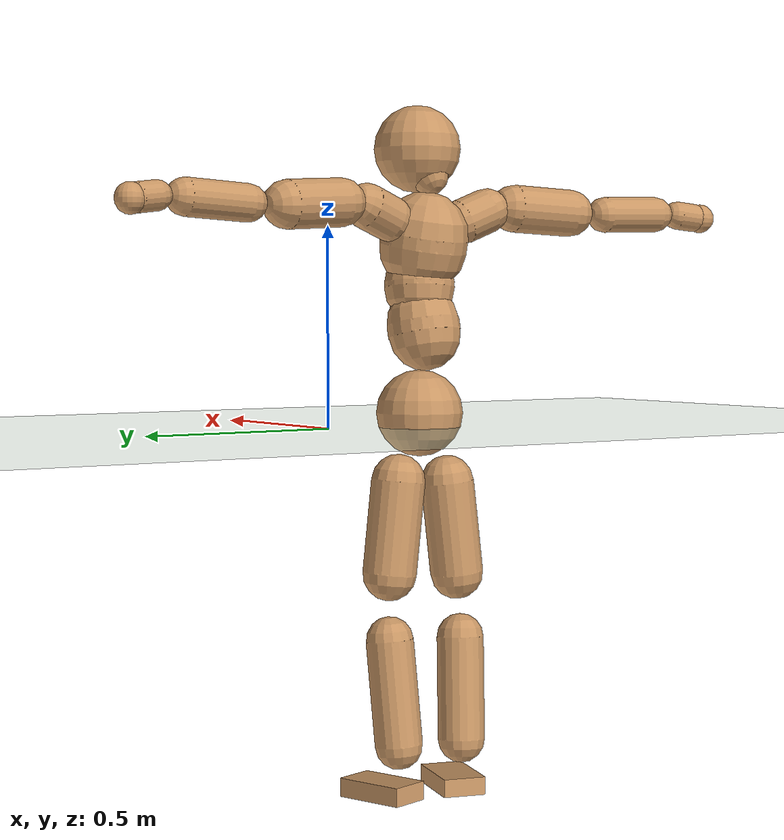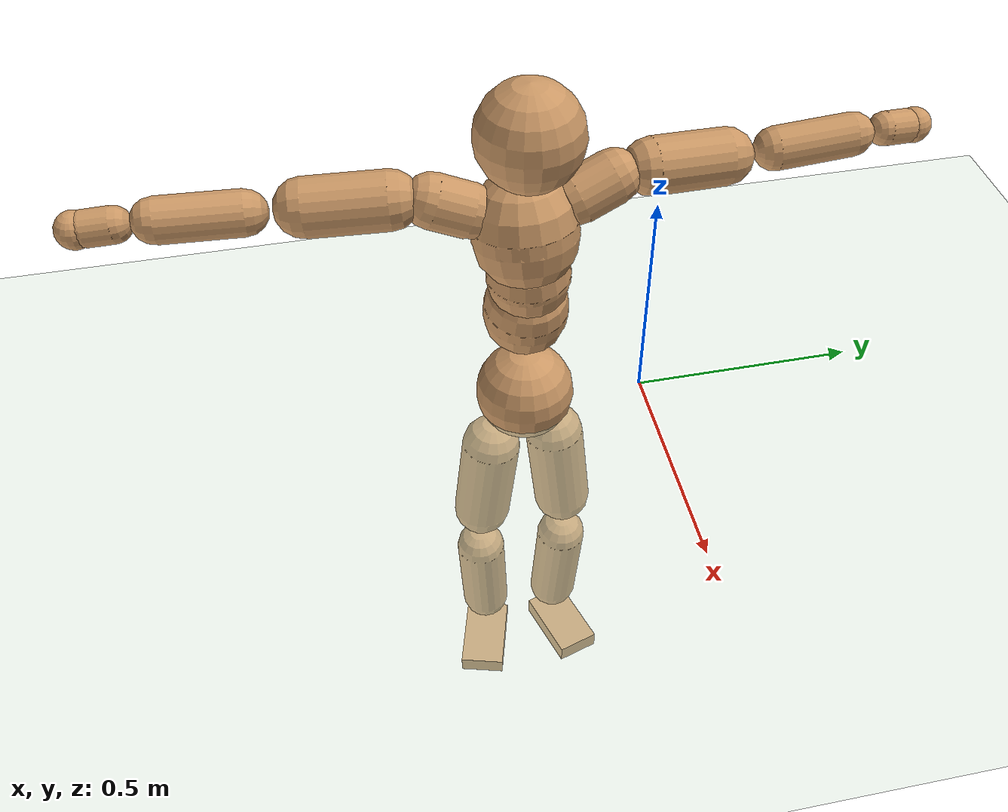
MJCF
<mujoco model="humanoid">
  <compiler coordinate="local"/>
  <default>
    <joint damping="0.0" armature="0.01" stiffness="0.0" limited="true"/>
    <geom conaffinity="1" condim="3" contype="7" margin="0.001" rgba="0.8 0.6 .4 1"/>
  </default>
  <asset>
    <texture type="skybox" builtin="gradient" rgb1=".4 .5 .6" rgb2="0 0 0" width="100" height="100"/>
    <texture builtin="flat" height="1278" mark="cross" markrgb="1 1 1" name="texgeom" random="0.01" rgb1="0.8 0.6 0.4" rgb2="0.8 0.6 0.4" type="cube" width="127"/>
    <texture builtin="checker" height="100" name="texplane" rgb1="0 0 0" rgb2="0.8 0.8 0.8" type="2d" width="100"/>
    <material name="MatPlane" reflectance="0.5" shininess="1" specular="1" texrepeat="60 60" texture="texplane"/>
    <material name="geom" texture="texgeom" texuniform="true"/>
  </asset>
  <worldbody>
    <light cutoff="100" diffuse="1 1 1" dir="-0 0 -1.3" directional="true" exponent="1" pos="0 0 1.3" specular=".1 .1 .1"/>
    <geom conaffinity="1" condim="3" name="floor" pos="0 0 0" rgba="0.8 0.9 0.8 1" size="100 100 .2" type="plane" material="MatPlane"/>
    <body name="Pelvis" pos="-0.0008 -0.2695 0.0333">
      <freejoint name="Pelvis"/>
      <geom type="sphere" contype="1" conaffinity="1" density="500" size="0.1101" pos="0.0000 0.0000 0.0000" name="Pelvis"/>
      <body name="L_Hip" pos="-0.0159 0.0665 -0.0902">
        <joint name="L_Hip_x" type="hinge" pos="0 0 0" axis="1 0 0" stiffness="800" damping="80" armature="0.02" range="-180.0000 180.0000"/>
        <joint name="L_Hip_y" type="hinge" pos="0 0 0" axis="0 1 0" stiffness="800" damping="80" armature="0.02" range="-180.0000 180.0000"/>
        <joint name="L_Hip_z" type="hinge" pos="0 0 0" axis="0 0 1" stiffness="800" damping="80" armature="0.02" range="-180.0000 180.0000"/>
        <geom type="capsule" contype="1" conaffinity="1" density="500" fromto="0.0010 0.0083 -0.0784 0.0041 0.0331 -0.3137" size="0.0681" name="L_Hip"/>
        <body name="L_Knee" pos="0.0052 0.0414 -0.3922">
          <joint name="L_Knee_x" type="hinge" pos="0 0 0" axis="1 0 0" stiffness="800" damping="80" armature="0.02" range="-180.0000 180.0000"/>
          <joint name="L_Knee_y" type="hinge" pos="0 0 0" axis="0 1 0" stiffness="800" damping="80" armature="0.02" range="-180.0000 180.0000"/>
          <joint name="L_Knee_z" type="hinge" pos="0 0 0" axis="0 0 1" stiffness="800" damping="80" armature="0.02" range="-180.0000 180.0000"/>
          <geom type="capsule" contype="1" conaffinity="1" density="500" fromto="-0.0086 -0.0035 -0.0885 -0.0343 -0.0138 -0.3542" size="0.0605" name="L_Knee"/>
          <body name="L_Ankle" pos="-0.0429 -0.0173 -0.4427">
            <joint name="L_Ankle_x" type="hinge" pos="0 0 0" axis="1 0 0" stiffness="800" damping="80" armature="0.02" range="-180.0000 180.0000"/>
            <joint name="L_Ankle_y" type="hinge" pos="0 0 0" axis="0 1 0" stiffness="800" damping="80" armature="0.02" range="-180.0000 180.0000"/>
            <joint name="L_Ankle_z" type="hinge" pos="0 0 0" axis="0 0 1" stiffness="800" damping="80" armature="0.02" range="-180.0000 180.0000"/>
            <geom type="box" contype="1" conaffinity="1" density="500" pos="0.0641 0.0195 -0.0313" size="0.094 0.0532 0.024" quat="0.9891 0.0000 0.0000 0.1472" name="L_Ankle"/>
            <body name="L_Toe" pos="0.1282 0.039 -0.0627">
              <joint name="L_Toe_x" type="hinge" pos="0 0 0" axis="1 0 0" stiffness="500" damping="50" armature="0.02" range="-180.0000 180.0000"/>
              <joint name="L_Toe_y" type="hinge" pos="0 0 0" axis="0 1 0" stiffness="500" damping="50" armature="0.02" range="-180.0000 180.0000"/>
              <joint name="L_Toe_z" type="hinge" pos="0 0 0" axis="0 0 1" stiffness="500" damping="50" armature="0.02" range="-180.0000 180.0000"/>
              <geom type="box" contype="1" conaffinity="1" density="500" pos="0.0000 0.0000 0.0305" size="0.0011 0.0026 0.0012" quat="0.9884 0.0000 0.0000 0.1520" name="L_Toe"/>
            </body>
          </body>
        </body>
      </body>
      <body name="R_Hip" pos="-0.0111 -0.0685 -0.099">
        <joint name="R_Hip_x" type="hinge" pos="0 0 0" axis="1 0 0" stiffness="800" damping="80" armature="0.02" range="-180.0000 180.0000"/>
        <joint name="R_Hip_y" type="hinge" pos="0 0 0" axis="0 1 0" stiffness="800" damping="80" armature="0.02" range="-180.0000 180.0000"/>
        <joint name="R_Hip_z" type="hinge" pos="0 0 0" axis="0 0 1" stiffness="800" damping="80" armature="0.02" range="-180.0000 180.0000"/>
        <geom type="capsule" contype="1" conaffinity="1" density="500" fromto="-0.0016 -0.0087 -0.0787 -0.0063 -0.0348 -0.3148" size="0.0679" name="R_Hip"/>
        <body name="R_Knee" pos="-0.0079 -0.0435 -0.3935">
          <joint name="R_Knee_x" type="hinge" pos="0 0 0" axis="1 0 0" stiffness="800" damping="80" armature="0.02" range="-180.0000 180.0000"/>
          <joint name="R_Knee_y" type="hinge" pos="0 0 0" axis="0 1 0" stiffness="800" damping="80" armature="0.02" range="-180.0000 180.0000"/>
          <joint name="R_Knee_z" type="hinge" pos="0 0 0" axis="0 0 1" stiffness="800" damping="80" armature="0.02" range="-180.0000 180.0000"/>
          <geom type="capsule" contype="1" conaffinity="1" density="500" fromto="-0.0079 0.0042 -0.0874 -0.0318 0.0168 -0.3494" size="0.0602" name="R_Knee"/>
          <body name="R_Ankle" pos="-0.0397 0.021 -0.4368">
            <joint name="R_Ankle_x" type="hinge" pos="0 0 0" axis="1 0 0" stiffness="800" damping="80" armature="0.02" range="-180.0000 180.0000"/>
            <joint name="R_Ankle_y" type="hinge" pos="0 0 0" axis="0 1 0" stiffness="800" damping="80" armature="0.02" range="-180.0000 180.0000"/>
            <joint name="R_Ankle_z" type="hinge" pos="0 0 0" axis="0 0 1" stiffness="800" damping="80" armature="0.02" range="-180.0000 180.0000"/>
            <geom type="box" contype="1" conaffinity="1" density="500" pos="0.0686 -0.0195 -0.0319" size="0.0952 0.0558 0.0231" quat="0.9904 0.0000 0.0000 -0.1381" name="R_Ankle"/>
            <body name="R_Toe" pos="0.1372 -0.039 -0.0637">
              <joint name="R_Toe_x" type="hinge" pos="0 0 0" axis="1 0 0" stiffness="500" damping="50" armature="0.02" range="-180.0000 180.0000"/>
              <joint name="R_Toe_y" type="hinge" pos="0 0 0" axis="0 1 0" stiffness="500" damping="50" armature="0.02" range="-180.0000 180.0000"/>
              <joint name="R_Toe_z" type="hinge" pos="0 0 0" axis="0 0 1" stiffness="500" damping="50" armature="0.02" range="-180.0000 180.0000"/>
              <geom type="box" contype="1" conaffinity="1" density="500" pos="0.0000 0.0000 0.0333" size="0.0012 0.0027 0.0012" quat="0.9916 0.0000 0.0000 -0.1296" name="R_Toe"/>
            </body>
          </body>
        </body>
      </body>
      <body name="Torso" pos="-0.0456 0.0047 0.139">
        <joint name="Torso_x" type="hinge" pos="0 0 0" axis="1 0 0" stiffness="1000" damping="100" armature="0.02" range="-180.0000 180.0000"/>
        <joint name="Torso_y" type="hinge" pos="0 0 0" axis="0 1 0" stiffness="1000" damping="100" armature="0.02" range="-180.0000 180.0000"/>
        <joint name="Torso_z" type="hinge" pos="0 0 0" axis="0 0 1" stiffness="1000" damping="100" armature="0.02" range="-180.0000 180.0000"/>
        <geom type="capsule" contype="1" conaffinity="1" density="500" fromto="0.0186 0.0031 0.0917 0.0124 0.0021 0.0612" size="0.0917" name="Torso"/>
        <body name="Spine" pos="0.031 0.0052 0.1529">
          <joint name="Spine_x" type="hinge" pos="0 0 0" axis="1 0 0" stiffness="1000" damping="100" armature="0.02" range="-180.0000 180.0000"/>
          <joint name="Spine_y" type="hinge" pos="0 0 0" axis="0 1 0" stiffness="1000" damping="100" armature="0.02" range="-180.0000 180.0000"/>
          <joint name="Spine_z" type="hinge" pos="0 0 0" axis="0 0 1" stiffness="1000" damping="100" armature="0.02" range="-180.0000 180.0000"/>
          <geom type="capsule" contype="1" conaffinity="1" density="500" fromto="0.0035 -0.0020 0.0373 0.0023 -0.0013 0.0248" size="0.089" name="Spine"/>
          <body name="Chest" pos="0.0058 -0.0033 0.0621">
            <joint name="Chest_x" type="hinge" pos="0 0 0" axis="1 0 0" stiffness="1000" damping="100" armature="0.02" range="-180.0000 180.0000"/>
            <joint name="Chest_y" type="hinge" pos="0 0 0" axis="0 1 0" stiffness="1000" damping="100" armature="0.02" range="-180.0000 180.0000"/>
            <joint name="Chest_z" type="hinge" pos="0 0 0" axis="0 0 1" stiffness="1000" damping="100" armature="0.02" range="-180.0000 180.0000"/>
            <geom type="capsule" contype="1" conaffinity="1" density="500" fromto="-0.0175 -0.0046 0.0934 -0.0117 -0.0031 0.0623" size="0.111" name="Chest"/>
            <body name="Neck" pos="-0.0413 -0.0121 0.2244">
              <joint name="Neck_x" type="hinge" pos="0 0 0" axis="1 0 0" stiffness="500" damping="50" armature="0.02" range="-180.0000 180.0000"/>
              <joint name="Neck_y" type="hinge" pos="0 0 0" axis="0 1 0" stiffness="500" damping="50" armature="0.02" range="-180.0000 180.0000"/>
              <joint name="Neck_z" type="hinge" pos="0 0 0" axis="0 0 1" stiffness="500" damping="50" armature="0.02" range="-180.0000 180.0000"/>
              <geom type="capsule" contype="1" conaffinity="1" density="500" fromto="0.0105 0.0020 0.0172 0.0421 0.0082 0.0690" size="0.0478" name="Neck"/>
              <body name="Head" pos="0.0526 0.0102 0.0862">
                <joint name="Head_x" type="hinge" pos="0 0 0" axis="1 0 0" stiffness="500" damping="50" armature="0.02" range="-180.0000 180.0000"/>
                <joint name="Head_y" type="hinge" pos="0 0 0" axis="0 1 0" stiffness="500" damping="50" armature="0.02" range="-180.0000 180.0000"/>
                <joint name="Head_z" type="hinge" pos="0 0 0" axis="0 0 1" stiffness="500" damping="50" armature="0.02" range="-180.0000 180.0000"/>
                <geom type="sphere" contype="1" conaffinity="1" density="500" size="0.1091" pos="0.0000 0.0000 0.0000" name="Head"/>
              </body>
            </body>
            <body name="L_Thorax" pos="-0.0208 0.0779 0.1225">
              <joint name="L_Thorax_x" type="hinge" pos="0 0 0" axis="1 0 0" stiffness="500" damping="50" armature="0.02" range="-180.0000 180.0000"/>
              <joint name="L_Thorax_y" type="hinge" pos="0 0 0" axis="0 1 0" stiffness="500" damping="50" armature="0.02" range="-180.0000 180.0000"/>
              <joint name="L_Thorax_z" type="hinge" pos="0 0 0" axis="0 0 1" stiffness="500" damping="50" armature="0.02" range="-180.0000 180.0000"/>
              <geom type="capsule" contype="1" conaffinity="1" density="500" fromto="-0.0045 0.0259 0.0096 -0.0180 0.1034 0.0384" size="0.0569" name="L_Thorax"/>
              <body name="L_Shoulder" pos="-0.0225 0.1293 0.048">
                <joint name="L_Shoulder_x" type="hinge" pos="0 0 0" axis="1 0 0" stiffness="500" damping="50" armature="0.02" range="-720.0000 720.0000"/>
                <joint name="L_Shoulder_y" type="hinge" pos="0 0 0" axis="0 1 0" stiffness="500" damping="50" armature="0.02" range="-720.0000 720.0000"/>
                <joint name="L_Shoulder_z" type="hinge" pos="0 0 0" axis="0 0 1" stiffness="500" damping="50" armature="0.02" range="-720.0000 720.0000"/>
                <geom type="capsule" contype="1" conaffinity="1" density="500" fromto="-0.0051 0.0535 -0.0033 -0.0204 0.2140 -0.0131" size="0.0598" name="L_Shoulder"/>
                <body name="L_Elbow" pos="-0.0255 0.2675 -0.0164">
                  <joint name="L_Elbow_x" type="hinge" pos="0 0 0" axis="1 0 0" stiffness="500" damping="50" armature="0.02" range="-720.0000 720.0000"/>
                  <joint name="L_Elbow_y" type="hinge" pos="0 0 0" axis="0 1 0" stiffness="500" damping="50" armature="0.02" range="-720.0000 720.0000"/>
                  <joint name="L_Elbow_z" type="hinge" pos="0 0 0" axis="0 0 1" stiffness="500" damping="50" armature="0.02" range="-720.0000 720.0000"/>
                  <geom type="capsule" contype="1" conaffinity="1" density="500" fromto="-0.0014 0.0557 0.0030 -0.0055 0.2229 0.0119" size="0.0456" name="L_Elbow"/>
                  <body name="L_Wrist" pos="-0.0068 0.2787 0.0148">
                    <joint name="L_Wrist_x" type="hinge" pos="0 0 0" axis="1 0 0" stiffness="300" damping="30" armature="0.02" range="-180.0000 180.0000"/>
                    <joint name="L_Wrist_y" type="hinge" pos="0 0 0" axis="0 1 0" stiffness="300" damping="30" armature="0.02" range="-180.0000 180.0000"/>
                    <joint name="L_Wrist_z" type="hinge" pos="0 0 0" axis="0 0 1" stiffness="300" damping="30" armature="0.02" range="-180.0000 180.0000"/>
                    <geom type="capsule" contype="1" conaffinity="1" density="500" fromto="-0.0033 0.0181 -0.0022 -0.0130 0.0723 -0.0089" size="0.0359" name="L_Wrist"/>
                    <body name="L_Hand" pos="-0.0163 0.0904 -0.0111">
                      <joint name="L_Hand_x" type="hinge" pos="0 0 0" axis="1 0 0" stiffness="300" damping="30" armature="0.02" range="-180.0000 180.0000"/>
                      <joint name="L_Hand_y" type="hinge" pos="0 0 0" axis="0 1 0" stiffness="300" damping="30" armature="0.02" range="-180.0000 180.0000"/>
                      <joint name="L_Hand_z" type="hinge" pos="0 0 0" axis="0 0 1" stiffness="300" damping="30" armature="0.02" range="-180.0000 180.0000"/>
                      <geom type="sphere" contype="1" conaffinity="1" density="500" size="0.0372" pos="0.0000 0.0000 0.0000" name="L_Hand"/>
                    </body>
                  </body>
                </body>
              </body>
            </body>
            <body name="R_Thorax" pos="-0.0255 -0.0888 0.1202">
              <joint name="R_Thorax_x" type="hinge" pos="0 0 0" axis="1 0 0" stiffness="500" damping="50" armature="0.02" range="-180.0000 180.0000"/>
              <joint name="R_Thorax_y" type="hinge" pos="0 0 0" axis="0 1 0" stiffness="500" damping="50" armature="0.02" range="-180.0000 180.0000"/>
              <joint name="R_Thorax_z" type="hinge" pos="0 0 0" axis="0 0 1" stiffness="500" damping="50" armature="0.02" range="-180.0000 180.0000"/>
              <geom type="capsule" contype="1" conaffinity="1" density="500" fromto="-0.0021 -0.0242 0.0099 -0.0084 -0.0969 0.0397" size="0.0569" name="R_Thorax"/>
              <body name="R_Shoulder" pos="-0.0105 -0.1211 0.0496">
                <joint name="R_Shoulder_x" type="hinge" pos="0 0 0" axis="1 0 0" stiffness="500" damping="50" armature="0.02" range="-720.0000 720.0000"/>
                <joint name="R_Shoulder_y" type="hinge" pos="0 0 0" axis="0 1 0" stiffness="500" damping="50" armature="0.02" range="-720.0000 720.0000"/>
                <joint name="R_Shoulder_z" type="hinge" pos="0 0 0" axis="0 0 1" stiffness="500" damping="50" armature="0.02" range="-720.0000 720.0000"/>
                <geom type="capsule" contype="1" conaffinity="1" density="500" fromto="-0.0071 -0.0551 -0.0028 -0.0285 -0.2203 -0.0111" size="0.0607" name="R_Shoulder"/>
                <body name="R_Elbow" pos="-0.0356 -0.2754 -0.0139">
                  <joint name="R_Elbow_x" type="hinge" pos="0 0 0" axis="1 0 0" stiffness="500" damping="50" armature="0.02" range="-720.0000 720.0000"/>
                  <joint name="R_Elbow_y" type="hinge" pos="0 0 0" axis="0 1 0" stiffness="500" damping="50" armature="0.02" range="-720.0000 720.0000"/>
                  <joint name="R_Elbow_z" type="hinge" pos="0 0 0" axis="0 0 1" stiffness="500" damping="50" armature="0.02" range="-720.0000 720.0000"/>
                  <geom type="capsule" contype="1" conaffinity="1" density="500" fromto="-0.0014 -0.0566 0.0015 -0.0056 -0.2265 0.0061" size="0.0465" name="R_Elbow"/>
                  <body name="R_Wrist" pos="-0.007 -0.2831 0.0076">
                    <joint name="R_Wrist_x" type="hinge" pos="0 0 0" axis="1 0 0" stiffness="300" damping="30" armature="0.02" range="-180.0000 180.0000"/>
                    <joint name="R_Wrist_y" type="hinge" pos="0 0 0" axis="0 1 0" stiffness="300" damping="30" armature="0.02" range="-180.0000 180.0000"/>
                    <joint name="R_Wrist_z" type="hinge" pos="0 0 0" axis="0 0 1" stiffness="300" damping="30" armature="0.02" range="-180.0000 180.0000"/>
                    <geom type="capsule" contype="1" conaffinity="1" density="500" fromto="-0.0021 -0.0188 -0.0018 -0.0084 -0.0752 -0.0074" size="0.0371" name="R_Wrist"/>
                    <body name="R_Hand" pos="-0.0105 -0.094 -0.0092">
                      <joint name="R_Hand_x" type="hinge" pos="0 0 0" axis="1 0 0" stiffness="300" damping="30" armature="0.02" range="-180.0000 180.0000"/>
                      <joint name="R_Hand_y" type="hinge" pos="0 0 0" axis="0 1 0" stiffness="300" damping="30" armature="0.02" range="-180.0000 180.0000"/>
                      <joint name="R_Hand_z" type="hinge" pos="0 0 0" axis="0 0 1" stiffness="300" damping="30" armature="0.02" range="-180.0000 180.0000"/>
                      <geom type="sphere" contype="1" conaffinity="1" density="500" size="0.0383" pos="0.0000 0.0000 0.0000" name="R_Hand"/>
                    </body>
                  </body>
                </body>
              </body>
            </body>
          </body>
        </body>
      </body>
    </body>
  </worldbody>
  <actuator>
    <motor name="L_Hip_x" joint="L_Hip_x" gear="500"/>
    <motor name="L_Hip_y" joint="L_Hip_y" gear="500"/>
    <motor name="L_Hip_z" joint="L_Hip_z" gear="500"/>
    <motor name="L_Knee_x" joint="L_Knee_x" gear="500"/>
    <motor name="L_Knee_y" joint="L_Knee_y" gear="500"/>
    <motor name="L_Knee_z" joint="L_Knee_z" gear="500"/>
    <motor name="L_Ankle_x" joint="L_Ankle_x" gear="500"/>
    <motor name="L_Ankle_y" joint="L_Ankle_y" gear="500"/>
    <motor name="L_Ankle_z" joint="L_Ankle_z" gear="500"/>
    <motor name="L_Toe_x" joint="L_Toe_x" gear="500"/>
    <motor name="L_Toe_y" joint="L_Toe_y" gear="500"/>
    <motor name="L_Toe_z" joint="L_Toe_z" gear="500"/>
    <motor name="R_Hip_x" joint="R_Hip_x" gear="500"/>
    <motor name="R_Hip_y" joint="R_Hip_y" gear="500"/>
    <motor name="R_Hip_z" joint="R_Hip_z" gear="500"/>
    <motor name="R_Knee_x" joint="R_Knee_x" gear="500"/>
    <motor name="R_Knee_y" joint="R_Knee_y" gear="500"/>
    <motor name="R_Knee_z" joint="R_Knee_z" gear="500"/>
    <motor name="R_Ankle_x" joint="R_Ankle_x" gear="500"/>
    <motor name="R_Ankle_y" joint="R_Ankle_y" gear="500"/>
    <motor name="R_Ankle_z" joint="R_Ankle_z" gear="500"/>
    <motor name="R_Toe_x" joint="R_Toe_x" gear="500"/>
    <motor name="R_Toe_y" joint="R_Toe_y" gear="500"/>
    <motor name="R_Toe_z" joint="R_Toe_z" gear="500"/>
    <motor name="Torso_x" joint="Torso_x" gear="500"/>
    <motor name="Torso_y" joint="Torso_y" gear="500"/>
    <motor name="Torso_z" joint="Torso_z" gear="500"/>
    <motor name="Spine_x" joint="Spine_x" gear="500"/>
    <motor name="Spine_y" joint="Spine_y" gear="500"/>
    <motor name="Spine_z" joint="Spine_z" gear="500"/>
    <motor name="Chest_x" joint="Chest_x" gear="500"/>
    <motor name="Chest_y" joint="Chest_y" gear="500"/>
    <motor name="Chest_z" joint="Chest_z" gear="500"/>
    <motor name="Neck_x" joint="Neck_x" gear="500"/>
    <motor name="Neck_y" joint="Neck_y" gear="500"/>
    <motor name="Neck_z" joint="Neck_z" gear="500"/>
    <motor name="Head_x" joint="Head_x" gear="500"/>
    <motor name="Head_y" joint="Head_y" gear="500"/>
    <motor name="Head_z" joint="Head_z" gear="500"/>
    <motor name="L_Thorax_x" joint="L_Thorax_x" gear="500"/>
    <motor name="L_Thorax_y" joint="L_Thorax_y" gear="500"/>
    <motor name="L_Thorax_z" joint="L_Thorax_z" gear="500"/>
    <motor name="L_Shoulder_x" joint="L_Shoulder_x" gear="500"/>
    <motor name="L_Shoulder_y" joint="L_Shoulder_y" gear="500"/>
    <motor name="L_Shoulder_z" joint="L_Shoulder_z" gear="500"/>
    <motor name="L_Elbow_x" joint="L_Elbow_x" gear="500"/>
    <motor name="L_Elbow_y" joint="L_Elbow_y" gear="500"/>
    <motor name="L_Elbow_z" joint="L_Elbow_z" gear="500"/>
    <motor name="L_Wrist_x" joint="L_Wrist_x" gear="500"/>
    <motor name="L_Wrist_y" joint="L_Wrist_y" gear="500"/>
    <motor name="L_Wrist_z" joint="L_Wrist_z" gear="500"/>
    <motor name="L_Hand_x" joint="L_Hand_x" gear="500"/>
    <motor name="L_Hand_y" joint="L_Hand_y" gear="500"/>
    <motor name="L_Hand_z" joint="L_Hand_z" gear="500"/>
    <motor name="R_Thorax_x" joint="R_Thorax_x" gear="500"/>
    <motor name="R_Thorax_y" joint="R_Thorax_y" gear="500"/>
    <motor name="R_Thorax_z" joint="R_Thorax_z" gear="500"/>
    <motor name="R_Shoulder_x" joint="R_Shoulder_x" gear="500"/>
    <motor name="R_Shoulder_y" joint="R_Shoulder_y" gear="500"/>
    <motor name="R_Shoulder_z" joint="R_Shoulder_z" gear="500"/>
    <motor name="R_Elbow_x" joint="R_Elbow_x" gear="500"/>
    <motor name="R_Elbow_y" joint="R_Elbow_y" gear="500"/>
    <motor name="R_Elbow_z" joint="R_Elbow_z" gear="500"/>
    <motor name="R_Wrist_x" joint="R_Wrist_x" gear="500"/>
    <motor name="R_Wrist_y" joint="R_Wrist_y" gear="500"/>
    <motor name="R_Wrist_z" joint="R_Wrist_z" gear="500"/>
    <motor name="R_Hand_x" joint="R_Hand_x" gear="500"/>
    <motor name="R_Hand_y" joint="R_Hand_y" gear="500"/>
    <motor name="R_Hand_z" joint="R_Hand_z" gear="500"/>
  </actuator>
  <contact>
    <exclude body1="Torso" body2="Chest"/>
    <exclude body1="Head" body2="Chest"/>
    <exclude body1="R_Knee" body2="R_Toe"/>
    <exclude body1="R_Knee" body2="L_Ankle"/>
    <exclude body1="R_Knee" body2="L_Toe"/>
    <exclude body1="L_Knee" body2="L_Toe"/>
    <exclude body1="L_Knee" body2="R_Ankle"/>
    <exclude body1="L_Knee" body2="R_Toe"/>
    <exclude body1="L_Shoulder" body2="Chest"/>
    <exclude body1="R_Shoulder" body2="Chest"/>
  </contact>
  <sensor/>
  <size njmax="700" nconmax="700"/>
</mujoco>
